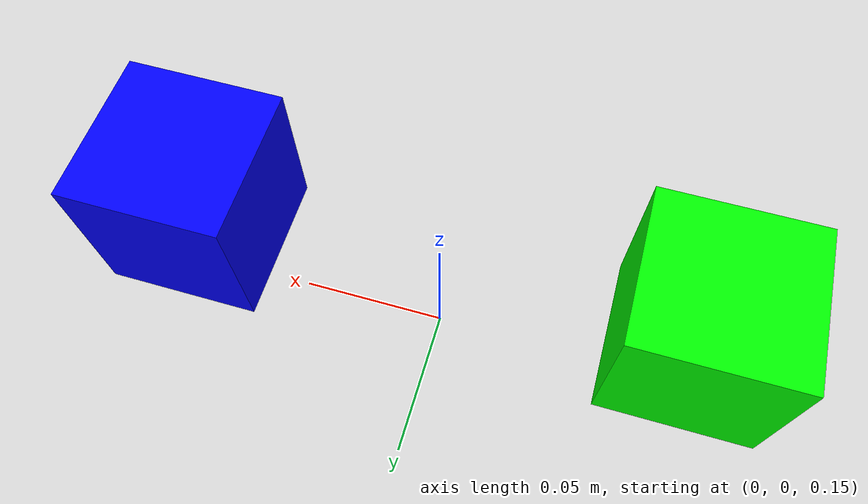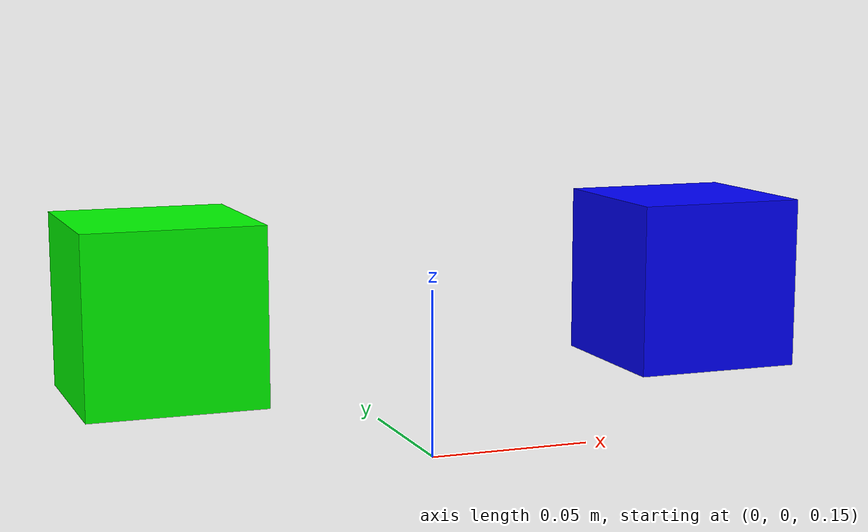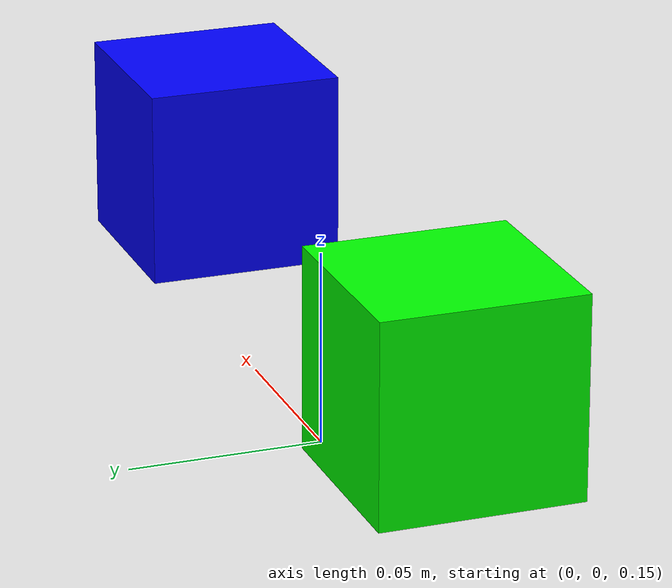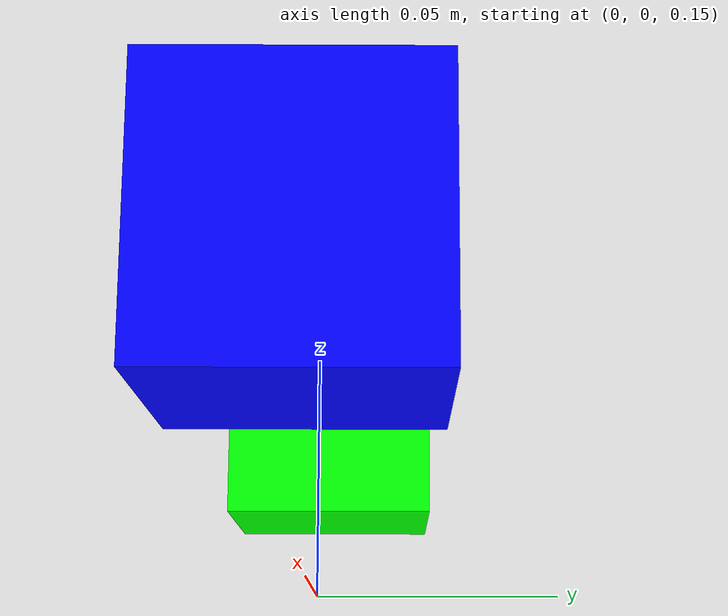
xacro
<?xml version="1.0"?>
<robot xmlns:xacro="http://www.ros.org/wiki/xacro" name="simple_robot">

  <!-- Define Parameters -->
  <xacro:property name="foot_to_camera_base" value="0.16"/>
  <xacro:property name="camera_stalk_height" value="0.04"/>
  <xacro:property name="joint_limit_lower" value="-3.14"/>
  <xacro:property name="joint_limit_upper" value="3.14"/>
  <xacro:property name="joint_effort" value="10"/>
  <xacro:property name="joint_velocity" value="1"/>
  <xacro:property name="baseline" value="0.1625"/>

  <!-- Links -->
  <link name="base_link"/>
  <link name="h_rod"/>
  <link name="cam_left">
    <visual>
      <geometry>
        <box size="0.05 0.05 0.05"/>
      </geometry>
      <material name="green">
        <color rgba="0 1 0 1"/>
      </material>
    </visual>
  </link>
  <link name="cam_right">
    <visual>
      <geometry>
        <box size="0.05 0.05 0.05"/>
      </geometry>
      <material name="blue">
        <color rgba="0 0 1 1"/>
      </material>
    </visual>
  </link>

  <!-- Joints -->
  <joint name="pitch_inclination" type="revolute">
    <parent link="base_link"/>
    <child link="h_rod"/>
    <origin xyz="0 0 ${foot_to_camera_base}" rpy="0 0 0"/>
    <axis xyz="1 0 0"/>
    <limit lower="${joint_limit_lower}" upper="${joint_limit_upper}" effort="${joint_effort}" velocity="${joint_velocity}"/>
  </joint>

  <joint name="cam_left_yaw" type="revolute">
    <parent link="h_rod"/>
    <child link="cam_left"/>
    <origin xyz="-${baseline/2} 0 ${camera_stalk_height}" rpy="0 0 0"/>
    <axis xyz="0 0 1"/>
    <limit lower="${joint_limit_lower}" upper="${joint_limit_upper}" effort="${joint_effort}" velocity="${joint_velocity}"/>
  </joint>

  <joint name="cam_right_yaw" type="revolute">
    <parent link="h_rod"/>
    <child link="cam_right"/>
    <origin xyz="${baseline/2} 0 ${camera_stalk_height}" rpy="0 0 0"/>
    <axis xyz="0 0 1"/>
    <limit lower="${joint_limit_lower}" upper="${joint_limit_upper}" effort="${joint_effort}" velocity="${joint_velocity}"/>
  </joint>

</robot>
